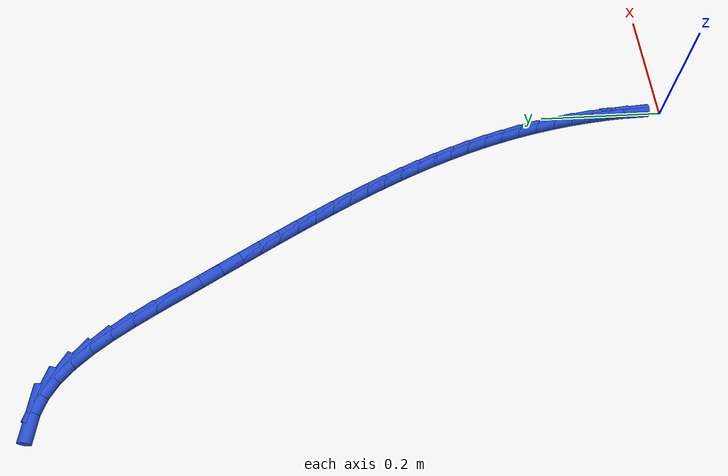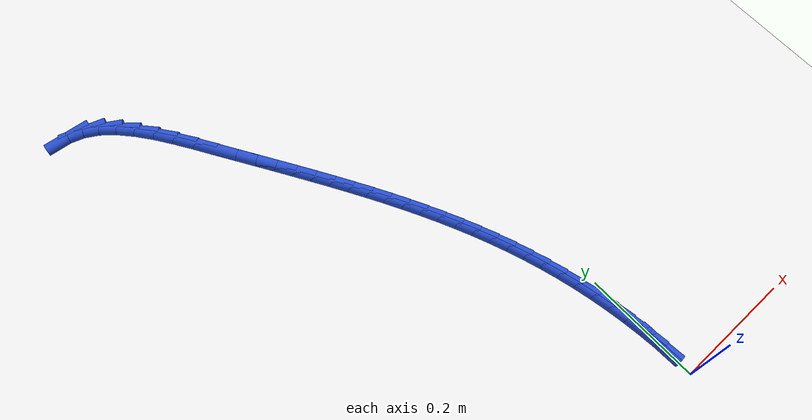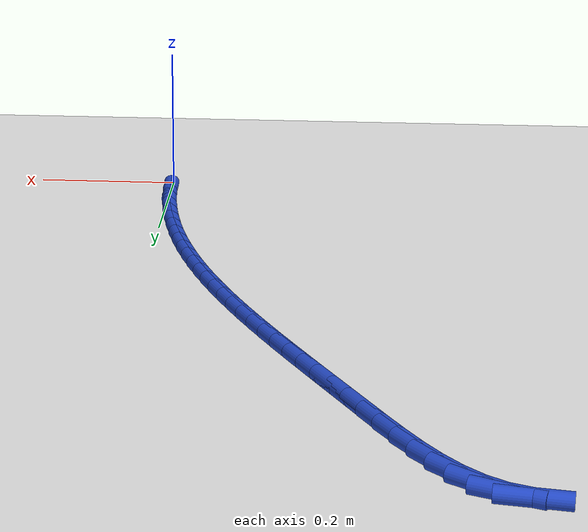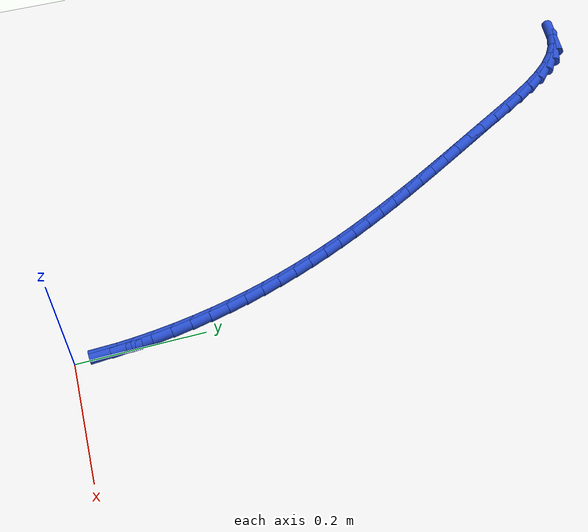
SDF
<sdf version="1.6">
 <world name="default">
  <model name="ground_plane">
   <static>1</static>
   <link name="link">
    <collision name="collision">
     <geometry><plane><normal>0 0 1</normal><size>100 100</size></plane></geometry>
     <surface><friction><ode><mu>100</mu><mu2>50</mu2></ode></friction></surface>
    </collision>
    <visual name="visual">
     <cast_shadows>0</cast_shadows>
     <geometry><plane><normal>0 0 1</normal><size>100 100</size></plane></geometry>
     <material>
      <script><uri>file://media/materials/scripts/gazebo.material</uri><name>Gazebo/WhiteGlow</name></script>
     </material>
    </visual>
   </link>
  </model>
  <model name="line">
   <link name="link_2">
    <pose>-0.001760066610713048 0.06301308879430077 0.01 0 1.57 -1.4916071398277913</pose>
    <collision name="collision">
     <geometry><cylinder><radius>0.01</radius><length>0.08</length></cylinder></geometry>
    </collision>
    <visual name="visual">
     <material>
      <script><name>Gazebo/Blue</name><uri>file://media/materials/scripts/gazebo.material</uri></script>
     </material>
     <geometry><cylinder><radius>0.01</radius><length>0.08</length></cylinder></geometry>
    </visual>
   </link>
   <link name="link_3">
    <pose>-0.0042631440131820604 0.09455581708767911 0.01 0 1.57 -1.4588813321798684</pose>
    <collision name="collision">
     <geometry><cylinder><radius>0.01</radius><length>0.08</length></cylinder></geometry>
    </collision>
    <visual name="visual">
     <material>
      <script><name>Gazebo/Blue</name><uri>file://media/materials/scripts/gazebo.material</uri></script>
     </material>
     <geometry><cylinder><radius>0.01</radius><length>0.08</length></cylinder></geometry>
    </visual>
   </link>
   <link name="link_4">
    <pose>-0.007795299478787609 0.12598499635421676 0.01 0 1.57 -1.4269340386513092</pose>
    <collision name="collision">
     <geometry><cylinder><radius>0.01</radius><length>0.08</length></cylinder></geometry>
    </collision>
    <visual name="visual">
     <material>
      <script><name>Gazebo/Blue</name><uri>file://media/materials/scripts/gazebo.material</uri></script>
     </material>
     <geometry><cylinder><radius>0.01</radius><length>0.08</length></cylinder></geometry>
    </visual>
   </link>
   <link name="link_5">
    <pose>-0.01231681950632586 0.15719737287566926 0.01 0 1.57 -1.3955093590211098</pose>
    <collision name="collision">
     <geometry><cylinder><radius>0.01</radius><length>0.08</length></cylinder></geometry>
    </collision>
    <visual name="visual">
     <material>
      <script><name>Gazebo/Blue</name><uri>file://media/materials/scripts/gazebo.material</uri></script>
     </material>
     <geometry><cylinder><radius>0.01</radius><length>0.08</length></cylinder></geometry>
    </visual>
   </link>
   <link name="link_6">
    <pose>-0.01778799059459297 0.1880896929337921 0.01 0 1.57 -1.364350625744347</pose>
    <collision name="collision">
     <geometry><cylinder><radius>0.01</radius><length>0.08</length></cylinder></geometry>
    </collision>
    <visual name="visual">
     <material>
      <script><name>Gazebo/Blue</name><uri>file://media/materials/scripts/gazebo.material</uri></script>
     </material>
     <geometry><cylinder><radius>0.01</radius><length>0.08</length></cylinder></geometry>
    </visual>
   </link>
   <link name="link_7">
    <pose>-0.024169099242385098 0.21855870281034084 0.01 0 1.57 -1.333301041023382</pose>
    <collision name="collision">
     <geometry><cylinder><radius>0.01</radius><length>0.08</length></cylinder></geometry>
    </collision>
    <visual name="visual">
     <material>
      <script><name>Gazebo/Blue</name><uri>file://media/materials/scripts/gazebo.material</uri></script>
     </material>
     <geometry><cylinder><radius>0.01</radius><length>0.08</length></cylinder></geometry>
    </visual>
   </link>
   <link name="link_8">
    <pose>-0.031421249575513316 0.2485183910856722 0.01 0 1.57 -1.302880161230077</pose>
    <collision name="collision">
     <geometry><cylinder><radius>0.01</radius><length>0.08</length></cylinder></geometry>
    </collision>
    <visual name="visual">
     <material>
      <script><name>Gazebo/Blue</name><uri>file://media/materials/scripts/gazebo.material</uri></script>
     </material>
     <geometry><cylinder><radius>0.01</radius><length>0.08</length></cylinder></geometry>
    </visual>
   </link>
   <link name="link_9">
    <pose>-0.03951041335994463 0.27798539620802065 0.01 0 1.57 -1.2734934558976863</pose>
    <collision name="collision">
     <geometry><cylinder><radius>0.01</radius><length>0.08</length></cylinder></geometry>
    </collision>
    <visual name="visual">
     <material>
      <script><name>Gazebo/Blue</name><uri>file://media/materials/scripts/gazebo.material</uri></script>
     </material>
     <geometry><cylinder><radius>0.01</radius><length>0.08</length></cylinder></geometry>
    </visual>
   </link>
   <link name="link_10">
    <pose>-0.04840435638800448 0.30701418944866293 0.01 0 1.57 -1.2453391597928292</pose>
    <collision name="collision">
     <geometry><cylinder><radius>0.01</radius><length>0.08</length></cylinder></geometry>
    </collision>
    <visual name="visual">
     <material>
      <script><name>Gazebo/Blue</name><uri>file://media/materials/scripts/gazebo.material</uri></script>
     </material>
     <geometry><cylinder><radius>0.01</radius><length>0.08</length></cylinder></geometry>
    </visual>
   </link>
   <link name="link_11">
    <pose>-0.05807084727160707 0.3356593015389859 0.01 0 1.57 -1.2185956438059296</pose>
    <collision name="collision">
     <geometry><cylinder><radius>0.01</radius><length>0.08</length></cylinder></geometry>
    </collision>
    <visual name="visual">
     <material>
      <script><name>Gazebo/Blue</name><uri>file://media/materials/scripts/gazebo.material</uri></script>
     </material>
     <geometry><cylinder><radius>0.01</radius><length>0.08</length></cylinder></geometry>
    </visual>
   </link>
   <link name="link_12">
    <pose>-0.06847765462266663 0.3639752632103765 0.01 0 1.57 -1.1934186810547682</pose>
    <collision name="collision">
     <geometry><cylinder><radius>0.01</radius><length>0.08</length></cylinder></geometry>
    </collision>
    <visual name="visual">
     <material>
      <script><name>Gazebo/Blue</name><uri>file://media/materials/scripts/gazebo.material</uri></script>
     </material>
     <geometry><cylinder><radius>0.01</radius><length>0.08</length></cylinder></geometry>
    </visual>
   </link>
   <link name="link_13">
    <pose>-0.07959254705309736 0.39201660519422166 0.01 0 1.57 -1.1699395097360588</pose>
    <collision name="collision">
     <geometry><cylinder><radius>0.01</radius><length>0.08</length></cylinder></geometry>
    </collision>
    <visual name="visual">
     <material>
      <script><name>Gazebo/Blue</name><uri>file://media/materials/scripts/gazebo.material</uri></script>
     </material>
     <geometry><cylinder><radius>0.01</radius><length>0.08</length></cylinder></geometry>
    </visual>
   </link>
   <link name="link_14">
    <pose>-0.09138329317481346 0.41983785822190833 0.01 0 1.57 -1.1482640205944987</pose>
    <collision name="collision">
     <geometry><cylinder><radius>0.01</radius><length>0.08</length></cylinder></geometry>
    </collision>
    <visual name="visual">
     <material>
      <script><name>Gazebo/Blue</name><uri>file://media/materials/scripts/gazebo.material</uri></script>
     </material>
     <geometry><cylinder><radius>0.01</radius><length>0.08</length></cylinder></geometry>
    </visual>
   </link>
   <link name="link_15">
    <pose>-0.1038176615997292 0.4474935530248233 0.01 0 1.57 -1.128472947034182</pose>
    <collision name="collision">
     <geometry><cylinder><radius>0.01</radius><length>0.08</length></cylinder></geometry>
    </collision>
    <visual name="visual">
     <material>
      <script><name>Gazebo/Blue</name><uri>file://media/materials/scripts/gazebo.material</uri></script>
     </material>
     <geometry><cylinder><radius>0.01</radius><length>0.08</length></cylinder></geometry>
    </visual>
   </link>
   <link name="link_16">
    <pose>-0.11686342093975881 0.4750382203343537 0.01 0 1.57 -1.110622879269722</pose>
    <collision name="collision">
     <geometry><cylinder><radius>0.01</radius><length>0.08</length></cylinder></geometry>
    </collision>
    <visual name="visual">
     <material>
      <script><name>Gazebo/Blue</name><uri>file://media/materials/scripts/gazebo.material</uri></script>
     </material>
     <geometry><cylinder><radius>0.01</radius><length>0.08</length></cylinder></geometry>
    </visual>
   </link>
   <link name="link_17">
    <pose>-0.13048833980681648 0.5025263908818863 0.01 0 1.57 -1.0947478968333602</pose>
    <collision name="collision">
     <geometry><cylinder><radius>0.01</radius><length>0.08</length></cylinder></geometry>
    </collision>
    <visual name="visual">
     <material>
      <script><name>Gazebo/Blue</name><uri>file://media/materials/scripts/gazebo.material</uri></script>
     </material>
     <geometry><cylinder><radius>0.01</radius><length>0.08</length></cylinder></geometry>
    </visual>
   </link>
   <link name="link_18">
    <pose>-0.1446601868128164 0.530012595398808 0.01 0 1.57 -1.080861612639124</pose>
    <collision name="collision">
     <geometry><cylinder><radius>0.01</radius><length>0.08</length></cylinder></geometry>
    </collision>
    <visual name="visual">
     <material>
      <script><name>Gazebo/Blue</name><uri>file://media/materials/scripts/gazebo.material</uri></script>
     </material>
     <geometry><cylinder><radius>0.01</radius><length>0.08</length></cylinder></geometry>
    </visual>
   </link>
   <link name="link_19">
    <pose>-0.15934673056967286 0.557551364616506 0.01 0 1.57 -1.0689594402174178</pose>
    <collision name="collision">
     <geometry><cylinder><radius>0.01</radius><length>0.08</length></cylinder></geometry>
    </collision>
    <visual name="visual">
     <material>
      <script><name>Gazebo/Blue</name><uri>file://media/materials/scripts/gazebo.material</uri></script>
     </material>
     <geometry><cylinder><radius>0.01</radius><length>0.08</length></cylinder></geometry>
    </visual>
   </link>
   <link name="link_20">
    <pose>-0.17451573968930006 0.5851972292663671 0.01 0 1.57 -1.0590209263301715</pose>
    <collision name="collision">
     <geometry><cylinder><radius>0.01</radius><length>0.08</length></cylinder></geometry>
    </collision>
    <visual name="visual">
     <material>
      <script><name>Gazebo/Blue</name><uri>file://media/materials/scripts/gazebo.material</uri></script>
     </material>
     <geometry><cylinder><radius>0.01</radius><length>0.08</length></cylinder></geometry>
    </visual>
   </link>
   <link name="link_21">
    <pose>-0.19013498278361216 0.6130047200797778 0.01 0 1.57 -1.0510120272003123</pose>
    <collision name="collision">
     <geometry><cylinder><radius>0.01</radius><length>0.08</length></cylinder></geometry>
    </collision>
    <visual name="visual">
     <material>
      <script><name>Gazebo/Blue</name><uri>file://media/materials/scripts/gazebo.material</uri></script>
     </material>
     <geometry><cylinder><radius>0.01</radius><length>0.08</length></cylinder></geometry>
    </visual>
   </link>
   <link name="link_22">
    <pose>-0.2061722284645235 0.6410283677881257 0.01 0 1.57 -1.0448872427274944</pose>
    <collision name="collision">
     <geometry><cylinder><radius>0.01</radius><length>0.08</length></cylinder></geometry>
    </collision>
    <visual name="visual">
     <material>
      <script><name>Gazebo/Blue</name><uri>file://media/materials/scripts/gazebo.material</uri></script>
     </material>
     <geometry><cylinder><radius>0.01</radius><length>0.08</length></cylinder></geometry>
    </visual>
   </link>
   <link name="link_23">
    <pose>-0.2225952453439482 0.6693227031227972 0.01 0 1.57 -1.0405915557319558</pose>
    <collision name="collision">
     <geometry><cylinder><radius>0.01</radius><length>0.08</length></cylinder></geometry>
    </collision>
    <visual name="visual">
     <material>
      <script><name>Gazebo/Blue</name><uri>file://media/materials/scripts/gazebo.material</uri></script>
     </material>
     <geometry><cylinder><radius>0.01</radius><length>0.08</length></cylinder></geometry>
    </visual>
   </link>
   <link name="link_24">
    <pose>-0.23937180203380048 0.6979422568151794 0.01 0 1.57 -1.038062150497498</pose>
    <collision name="collision">
     <geometry><cylinder><radius>0.01</radius><length>0.08</length></cylinder></geometry>
    </collision>
    <visual name="visual">
     <material>
      <script><name>Gazebo/Blue</name><uri>file://media/materials/scripts/gazebo.material</uri></script>
     </material>
     <geometry><cylinder><radius>0.01</radius><length>0.08</length></cylinder></geometry>
    </visual>
   </link>
   <link name="link_25">
    <pose>-0.2564696671459946 0.7269415595966595 0.01 0 1.57 -1.0372299059757648</pose>
    <collision name="collision">
     <geometry><cylinder><radius>0.01</radius><length>0.08</length></cylinder></geometry>
    </collision>
    <visual name="visual">
     <material>
      <script><name>Gazebo/Blue</name><uri>file://media/materials/scripts/gazebo.material</uri></script>
     </material>
     <geometry><cylinder><radius>0.01</radius><length>0.08</length></cylinder></geometry>
    </visual>
   </link>
   <link name="link_26">
    <pose>-0.2738566092924449 0.7563751421986242 0.01 0 1.57 -1.0380206741448013</pose>
    <collision name="collision">
     <geometry><cylinder><radius>0.01</radius><length>0.08</length></cylinder></geometry>
    </collision>
    <visual name="visual">
     <material>
      <script><name>Gazebo/Blue</name><uri>file://media/materials/scripts/gazebo.material</uri></script>
     </material>
     <geometry><cylinder><radius>0.01</radius><length>0.08</length></cylinder></geometry>
    </visual>
   </link>
   <link name="link_27">
    <pose>-0.2915003970850653 0.7862975353524602 0.01 0 1.57 -1.037987114227847</pose>
    <collision name="collision">
     <geometry><cylinder><radius>0.01</radius><length>0.08</length></cylinder></geometry>
    </collision>
    <visual name="visual">
     <material>
      <script><name>Gazebo/Blue</name><uri>file://media/materials/scripts/gazebo.material</uri></script>
     </material>
     <geometry><cylinder><radius>0.01</radius><length>0.08</length></cylinder></geometry>
    </visual>
   </link>
   <link name="link_28">
    <pose>-0.3093941555290255 0.816641530355099 0.01 0 1.57 -1.0244099191906808</pose>
    <collision name="collision">
     <geometry><cylinder><radius>0.01</radius><length>0.08</length></cylinder></geometry>
    </collision>
    <visual name="visual">
     <material>
      <script><name>Gazebo/Blue</name><uri>file://media/materials/scripts/gazebo.material</uri></script>
     </material>
     <geometry><cylinder><radius>0.01</radius><length>0.08</length></cylinder></geometry>
    </visual>
   </link>
   <link name="link_29">
    <pose>-0.32766678098147045 0.8466880620884716 0.01 0 1.57 -0.9920492674054355</pose>
    <collision name="collision">
     <geometry><cylinder><radius>0.01</radius><length>0.08</length></cylinder></geometry>
    </collision>
    <visual name="visual">
     <material>
      <script><name>Gazebo/Blue</name><uri>file://media/materials/scripts/gazebo.material</uri></script>
     </material>
     <geometry><cylinder><radius>0.01</radius><length>0.08</length></cylinder></geometry>
    </visual>
   </link>
   <link name="link_30">
    <pose>-0.34649242289709453 0.8755007992623202 0.01 0 1.57 -0.9376806537002139</pose>
    <collision name="collision">
     <geometry><cylinder><radius>0.01</radius><length>0.08</length></cylinder></geometry>
    </collision>
    <visual name="visual">
     <material>
      <script><name>Gazebo/Blue</name><uri>file://media/materials/scripts/gazebo.material</uri></script>
     </material>
     <geometry><cylinder><radius>0.01</radius><length>0.08</length></cylinder></geometry>
    </visual>
   </link>
   <link name="link_31">
    <pose>-0.3660452618326739 0.9021432612611355 0.01 0 1.57 -0.8553338217312091</pose>
    <collision name="collision">
     <geometry><cylinder><radius>0.01</radius><length>0.08</length></cylinder></geometry>
    </collision>
    <visual name="visual">
     <material>
      <script><name>Gazebo/Blue</name><uri>file://media/materials/scripts/gazebo.material</uri></script>
     </material>
     <geometry><cylinder><radius>0.01</radius><length>0.08</length></cylinder></geometry>
    </visual>
   </link>
   <link name="link_32">
    <pose>-0.3864994783449847 0.9256789674694083 0.01 0 1.57 -0.7357755166653023</pose>
    <collision name="collision">
     <geometry><cylinder><radius>0.01</radius><length>0.08</length></cylinder></geometry>
    </collision>
    <visual name="visual">
     <material>
      <script><name>Gazebo/Blue</name><uri>file://media/materials/scripts/gazebo.material</uri></script>
     </material>
     <geometry><cylinder><radius>0.01</radius><length>0.08</length></cylinder></geometry>
    </visual>
   </link>
   <link name="link_33">
    <pose>-0.4080292529908031 0.9451714372716283 0.01 0 1.57 -0.5672508133186392</pose>
    <collision name="collision">
     <geometry><cylinder><radius>0.01</radius><length>0.08</length></cylinder></geometry>
    </collision>
    <visual name="visual">
     <material>
      <script><name>Gazebo/Blue</name><uri>file://media/materials/scripts/gazebo.material</uri></script>
     </material>
     <geometry><cylinder><radius>0.01</radius><length>0.08</length></cylinder></geometry>
    </visual>
   </link>
   <link name="link_34">
    <pose>-0.43080876632690523 0.9596841900522866 0.01 0 1.57 -0.3464986876725425</pose>
    <collision name="collision">
     <geometry><cylinder><radius>0.01</radius><length>0.08</length></cylinder></geometry>
    </collision>
    <visual name="visual">
     <material>
      <script><name>Gazebo/Blue</name><uri>file://media/materials/scripts/gazebo.material</uri></script>
     </material>
     <geometry><cylinder><radius>0.01</radius><length>0.08</length></cylinder></geometry>
    </visual>
   </link>
   <link name="link_35">
    <pose>-0.455017104530727 0.9684249905326571 0.01 0 1.57 -0.13820005782777642</pose>
    <collision name="collision">
     <geometry><cylinder><radius>0.01</radius><length>0.08</length></cylinder></geometry>
    </collision>
    <visual name="visual">
     <material>
      <script><name>Gazebo/Blue</name><uri>file://media/materials/scripts/gazebo.material</uri></script>
     </material>
     <geometry><cylinder><radius>0.01</radius><length>0.08</length></cylinder></geometry>
    </visual>
   </link>
   <link name="link_282">
    <pose>-0.0019420163295923321 0.0632332040187574 0.01 0 1.57 -1.5400940064109385</pose>
    <collision name="collision">
     <geometry><cylinder><radius>0.01</radius><length>0.08</length></cylinder></geometry>
    </collision>
    <visual name="visual">
     <material>
      <script><name>Gazebo/Blue</name><uri>file://media/materials/scripts/gazebo.material</uri></script>
     </material>
     <geometry><cylinder><radius>0.01</radius><length>0.08</length></cylinder></geometry>
    </visual>
   </link>
  </model>
 </world>
</sdf>
